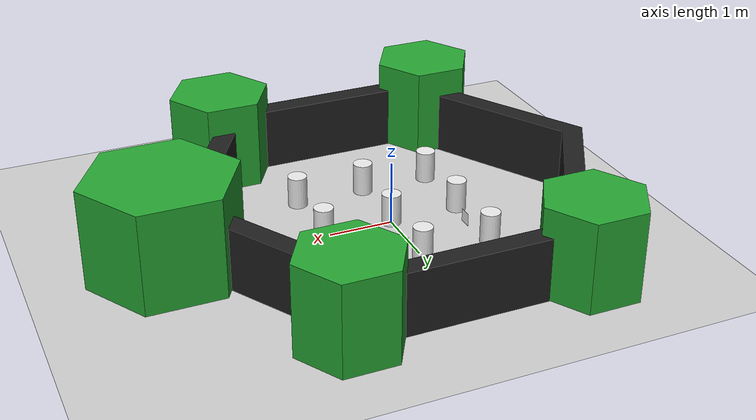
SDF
<sdf version='1.10'>
  <world name='roboto_world'>
    <physics name='1ms' type='ignored'>
      <max_step_size>0.001</max_step_size>
      <real_time_factor>1</real_time_factor>
      <real_time_update_rate>1000</real_time_update_rate>
    </physics>
    <plugin name='gz::sim::systems::Physics' filename='gz-sim-physics-system'/>
    <plugin name='gz::sim::systems::UserCommands' filename='gz-sim-user-commands-system'/>
    <plugin name='gz::sim::systems::SceneBroadcaster' filename='gz-sim-scene-broadcaster-system'/>
    <plugin name='gz::sim::systems::Contact' filename='gz-sim-contact-system'/>

    <gravity>0 0 -9.8067</gravity>
    <magnetic_field>5.5645e-06 2.2876e-05 -4.2388e-05</magnetic_field>
    <atmosphere type='adiabatic'/>
    <scene>
      <ambient>0.4 0.4 0.4 1</ambient>
      <background>0.7 0.7 0.7 1</background>
      <shadows>true</shadows>
    </scene>

    <model name='ground_plane'>
      <static>true</static>
      <link name='link'>
        <collision name='collision'>
          <geometry>
            <plane>
              <normal>0 0 1</normal>
              <size>100 100</size>
            </plane>
          </geometry>
          <surface>
            <friction>
              <ode/>
            </friction>
            <bounce/>
            <contact/>
          </surface>
        </collision>
        <visual name='visual'>
          <geometry>
            <plane>
              <normal>0 0 1</normal>
              <size>100 100</size>
            </plane>
          </geometry>
          <material>
            <ambient>0.800000012 0.800000012 0.800000012 1</ambient>
            <diffuse>0.800000012 0.800000012 0.800000012 1</diffuse>
            <specular>0.800000012 0.800000012 0.800000012 1</specular>
          </material>
        </visual>
        <pose>0 0 0 0 0 0</pose>
        <inertial>
          <pose>0 0 0 0 0 0</pose>
          <mass>1</mass>
          <inertia>
            <ixx>1</ixx>
            <ixy>0</ixy>
            <ixz>0</ixz>
            <iyy>1</iyy>
            <iyz>0</iyz>
            <izz>1</izz>
          </inertia>
        </inertial>
        <enable_wind>false</enable_wind>
      </link>
      <pose>0 0 0 0 0 0</pose>
      <self_collide>false</self_collide>
    </model>

    <model name="tag0">
      <static>true</static>
      <link name="link">
        <visual name="visual">
          <pose>1.0 0.5 0.12 1.5708 1.5708 1.5708</pose>
          <geometry>
            <box>
              <size>0.2 0.2 0.001</size>
            </box>
          </geometry>
          <material>
            <ambient>1 1 1 1</ambient>
            <diffuse>1 1 1 1</diffuse>
            <specular>0.5 0.5 0.5 1</specular>
            <pbr>
              <metal>
                <albedo_map>file://materials/textures/tag36_11_00000.png</albedo_map>
                <roughness>0.5</roughness>
                <metalness>0.0</metalness>
              </metal>
            </pbr>
          </material>
        </visual>
        <collision name="collision">
          <pose>1.0 0.5 0.12 1.5708 1.5708 1.5708</pose>
          <geometry>
            <box>
              <size>0.2 0.2 0.001</size>
            </box>
          </geometry>
        </collision>
      </link>
    </model>

    <model name="tag1">
      <static>true</static>
      <link name="link">
        <visual name="visual">
          <pose>-1.0 0.5 0.12 0.0 1.5708 3.1416</pose>
          <geometry>
            <box>
              <size>0.2 0.2 0.001</size>
            </box>
          </geometry>
          <material>
            <ambient>1 1 1 1</ambient>
            <diffuse>1 1 1 1</diffuse>
            <specular>0.5 0.5 0.5 1</specular>
            <pbr>
              <metal>
                <albedo_map>file://materials/textures/tag36_11_00001.png</albedo_map>
                <roughness>0.5</roughness>
                <metalness>0.0</metalness>
              </metal>
            </pbr>
          </material>
        </visual>
        <collision name="collision">
          <pose>-1.0 0.5 0.12 0.0 1.5708 3.1416</pose>
          <geometry>
            <box>
              <size>0.2 0.2 0.001</size>
            </box>
          </geometry>
        </collision>
      </link>
    </model>

    <model name='arena'>
      <static>1</static>
      <link name='symbol'>
        <collision name='one_one'>
          <pose>-1.1 -1.1 0.25 0 0 0</pose>
          <geometry>
            <cylinder>
              <radius>0.15</radius>
              <length>0.5</length>
            </cylinder>
          </geometry>
          <max_contacts>10</max_contacts>
          <surface>
            <bounce/>
            <friction>
              <ode/>
            </friction>
            <contact>
              <ode/>
            </contact>
          </surface>
        </collision>

        <visual name='one_one'>
          <pose>-1.1 -1.1 0.25 0 0 0</pose>
          <geometry>
            <cylinder>
              <radius>0.15</radius>
              <length>0.5</length>
            </cylinder>
          </geometry>
          <material>
            <script>
              <uri>file://media/materials/scripts/gazebo.material</uri>
              <name>Gazebo/White</name>
            </script>
          </material>
        </visual>

        <collision name='one_two'>
          <pose>-1.1 0 0.25 0 0 0</pose>
          <geometry>
            <cylinder>
              <radius>0.15</radius>
              <length>0.5</length>
            </cylinder>
          </geometry>
          <max_contacts>10</max_contacts>
          <surface>
            <bounce/>
            <friction>
              <ode/>
            </friction>
            <contact>
              <ode/>
            </contact>
          </surface>
        </collision>

        <visual name='one_two'>
          <pose>-1.1 0 0.25 0 0 0</pose>
          <geometry>
            <cylinder>
              <radius>0.15</radius>
              <length>0.5</length>
            </cylinder>
          </geometry>
          <material>
            <script>
              <uri>file://media/materials/scripts/gazebo.material</uri>
              <name>Gazebo/White</name>
            </script>
          </material>
        </visual>

        <collision name='one_three'>
          <pose>-1.1 1.1 0.25 0 0 0</pose>
          <geometry>
            <cylinder>
              <radius>0.15</radius>
              <length>0.5</length>
            </cylinder>
          </geometry>
          <max_contacts>10</max_contacts>
          <surface>
            <bounce/>
            <friction>
              <ode/>
            </friction>
            <contact>
              <ode/>
            </contact>
          </surface>
        </collision>

        <visual name='one_three'>
          <pose>-1.1 1.1 0.25 0 0 0</pose>
          <geometry>
            <cylinder>
              <radius>0.15</radius>
              <length>0.5</length>
            </cylinder>
          </geometry>
          <material>
            <script>
              <uri>file://media/materials/scripts/gazebo.material</uri>
              <name>Gazebo/White</name>
            </script>
          </material>
        </visual>

        <collision name='two_one'>
          <pose>0 -1.1 0.25 0 0 0</pose>
          <geometry>
            <cylinder>
              <radius>0.15</radius>
              <length>0.5</length>
            </cylinder>
          </geometry>
          <max_contacts>10</max_contacts>
          <surface>
            <bounce/>
            <friction>
              <ode/>
            </friction>
            <contact>
              <ode/>
            </contact>
          </surface>
        </collision>

        <visual name='two_one'>
          <pose>0 -1.1 0.25 0 0 0</pose>
          <geometry>
            <cylinder>
              <radius>0.15</radius>
              <length>0.5</length>
            </cylinder>
          </geometry>
          <material>
            <script>
              <uri>file://media/materials/scripts/gazebo.material</uri>
              <name>Gazebo/White</name>
            </script>
          </material>
        </visual>

        <collision name='two_two'>
          <pose>0 0 0.25 0 0 0</pose>
          <geometry>
            <cylinder>
              <radius>0.15</radius>
              <length>0.5</length>
            </cylinder>
          </geometry>
          <max_contacts>10</max_contacts>
          <surface>
            <bounce/>
            <friction>
              <ode/>
            </friction>
            <contact>
              <ode/>
            </contact>
          </surface>
        </collision>

        <visual name='two_two'>
          <pose>0 0 0.25 0 0 0</pose>
          <geometry>
            <cylinder>
              <radius>0.15</radius>
              <length>0.5</length>
            </cylinder>
          </geometry>
          <material>
            <script>
              <uri>file://media/materials/scripts/gazebo.material</uri>
              <name>Gazebo/White</name>
            </script>
          </material>
        </visual>

        <collision name='two_three'>
          <pose>0 1.1 0.25 0 0 0</pose>
          <geometry>
            <cylinder>
              <radius>0.15</radius>
              <length>0.5</length>
            </cylinder>
          </geometry>
          <max_contacts>10</max_contacts>
          <surface>
            <bounce/>
            <friction>
              <ode/>
            </friction>
            <contact>
              <ode/>
            </contact>
          </surface>
        </collision>

        <visual name='two_three'>
          <pose>0 1.1 0.25 0 0 0</pose>
          <geometry>
            <cylinder>
              <radius>0.15</radius>
              <length>0.5</length>
            </cylinder>
          </geometry>
          <material>
            <script>
              <uri>file://media/materials/scripts/gazebo.material</uri>
              <name>Gazebo/White</name>
            </script>
          </material>
        </visual>

        <collision name='three_one'>
          <pose>1.1 -1.1 0.25 0 0 0</pose>
          <geometry>
            <cylinder>
              <radius>0.15</radius>
              <length>0.5</length>
            </cylinder>
          </geometry>
          <max_contacts>10</max_contacts>
          <surface>
            <bounce/>
            <friction>
              <ode/>
            </friction>
            <contact>
              <ode/>
            </contact>
          </surface>
        </collision>

        <visual name='three_one'>
          <pose>1.1 -1.1 0.25 0 0 0</pose>
          <geometry>
            <cylinder>
              <radius>0.15</radius>
              <length>0.5</length>
            </cylinder>
          </geometry>
          <material>
            <script>
              <uri>file://media/materials/scripts/gazebo.material</uri>
              <name>Gazebo/White</name>
            </script>
          </material>
        </visual>

        <collision name='three_two'>
          <pose>1.1 0 0.25 0 0 0</pose>
          <geometry>
            <cylinder>
              <radius>0.15</radius>
              <length>0.5</length>
            </cylinder>
          </geometry>
          <max_contacts>10</max_contacts>
          <surface>
            <bounce/>
            <friction>
              <ode/>
            </friction>
            <contact>
              <ode/>
            </contact>
          </surface>
        </collision>

        <visual name='three_two'>
          <pose>1.1 0 0.25 0 0 0</pose>
          <geometry>
            <cylinder>
              <radius>0.15</radius>
              <length>0.5</length>
            </cylinder>
          </geometry>
          <material>
            <script>
              <uri>file://media/materials/scripts/gazebo.material</uri>
              <name>Gazebo/White</name>
            </script>
          </material>
        </visual>

        <collision name='three_three'>
          <pose>1.1 1.1 0.25 0 0 0</pose>
          <geometry>
            <cylinder>
              <radius>0.15</radius>
              <length>0.5</length>
            </cylinder>
          </geometry>
          <max_contacts>10</max_contacts>
          <surface>
            <bounce/>
            <friction>
              <ode/>
            </friction>
            <contact>
              <ode/>
            </contact>
          </surface>
        </collision>

        <visual name='three_three'>
          <pose>1.1 1.1 0.25 0 0 0</pose>
          <geometry>
            <cylinder>
              <radius>0.15</radius>
              <length>0.5</length>
            </cylinder>
          </geometry>
          <material>
            <script>
              <uri>file://media/materials/scripts/gazebo.material</uri>
              <name>Gazebo/White</name>
            </script>
          </material>
        </visual>

        <!-- Draw Hexagon -->
        <collision name='head'>
          <pose>3.5 0 -0.5 0 0 0</pose>
          <geometry>
            <mesh>
              <uri>model://meshes/hexagon.dae</uri>
              <scale>0.8 0.8 0.8</scale>
            </mesh>
          </geometry>
          <max_contacts>10</max_contacts>
          <surface>
            <bounce/>
            <friction>
              <ode/>
            </friction>
            <contact>
              <ode/>
            </contact>
          </surface>
        </collision>

        <visual name='head'>
          <pose>3.5 0 -0.5 0 0 0</pose>
          <geometry>
            <mesh>
              <uri>model://meshes/hexagon.dae</uri>
              <scale>0.8 0.8 0.8</scale>
            </mesh>
          </geometry>
          <material>
            <script>
              <uri>file://media/materials/scripts/gazebo.material</uri>
              <name>Gazebo/Green</name>
            </script>
          </material>
        </visual>

        <collision name='left_hand'>
          <pose>1.8 2.7 0 0 0 0</pose>
          <geometry>
            <mesh>
              <uri>model://meshes/hexagon.dae</uri>
              <scale>0.55 0.55 0.55</scale>
            </mesh>
          </geometry>
          <max_contacts>10</max_contacts>
          <surface>
            <bounce/>
            <friction>
              <ode/>
            </friction>
            <contact>
              <ode/>
            </contact>
          </surface>
        </collision>

        <visual name='left_hand'>
          <pose>1.8 2.7 0 0 0 0</pose>
          <geometry>
            <mesh>
              <uri>model://meshes/hexagon.dae</uri>
              <scale>0.55 0.55 0.55</scale>
            </mesh>
          </geometry>
          <material>
            <script>
              <uri>file://media/materials/scripts/gazebo.material</uri>
              <name>Gazebo/Green</name>
            </script>
          </material>
        </visual>

        <collision name='right_hand'>
          <pose>1.8 -2.7 0 0 0 0</pose>
          <geometry>
            <mesh>
              <uri>model://meshes/hexagon.dae</uri>
              <scale>0.55 0.55 0.55</scale>
            </mesh>
          </geometry>
          <max_contacts>10</max_contacts>
          <surface>
            <bounce/>
            <friction>
              <ode/>
            </friction>
            <contact>
              <ode/>
            </contact>
          </surface>
        </collision>

        <visual name='right_hand'>
          <pose>1.8 -2.7 0 0 0 0</pose>
          <geometry>
            <mesh>
              <uri>model://meshes/hexagon.dae</uri>
              <scale>0.55 0.55 0.55</scale>
            </mesh>
          </geometry>
          <material>
            <script>
              <uri>file://media/materials/scripts/gazebo.material</uri>
              <name>Gazebo/Green</name>
            </script>
          </material>
        </visual>

        <collision name='left_foot'>
          <pose>-1.8 2.7 0 0 0 0</pose>
          <geometry>
            <mesh>
              <uri>model://meshes/hexagon.dae</uri>
              <scale>0.55 0.55 0.55</scale>
            </mesh>
          </geometry>
          <max_contacts>10</max_contacts>
          <surface>
            <bounce/>
            <friction>
              <ode/>
            </friction>
            <contact>
              <ode/>
            </contact>
          </surface>
        </collision>

        <visual name='left_foot'>
          <pose>-1.8 2.7 0 0 0 0</pose>
          <geometry>
            <mesh>
              <uri>model://meshes/hexagon.dae</uri>
              <scale>0.55 0.55 0.55</scale>
            </mesh>
          </geometry>
          <material>
            <script>
              <uri>file://media/materials/scripts/gazebo.material</uri>
              <name>Gazebo/Green</name>
            </script>
          </material>
        </visual>

        <collision name='right_foot'>
          <pose>-1.8 -2.7 0 0 0 0</pose>
          <geometry>
            <mesh>
              <uri>model://meshes/hexagon.dae</uri>
              <scale>0.55 0.55 0.55</scale>
            </mesh>
          </geometry>
          <max_contacts>10</max_contacts>
          <surface>
            <bounce/>
            <friction>
              <ode/>
            </friction>
            <contact>
              <ode/>
            </contact>
          </surface>
        </collision>

        <visual name='right_foot'>
          <pose>-1.8 -2.7 0 0 0 0</pose>
          <geometry>
            <mesh>
              <uri>model://meshes/hexagon.dae</uri>
              <scale>0.55 0.55 0.55</scale>
            </mesh>
          </geometry>
          <material>
            <script>
              <uri>file://media/materials/scripts/gazebo.material</uri>
              <name>Gazebo/Green</name>
            </script>
          </material>
        </visual>

        <!-- Draw Wall -->
        <collision name='body'>
          <pose>0 0 -0.3 0 0 -1.5708</pose>
          <geometry>
            <mesh>
              <uri>model://meshes/wall.dae</uri>
              <scale>0.25 0.25 0.25</scale>
            </mesh>
          </geometry>
          <max_contacts>10</max_contacts>
          <surface>
            <bounce/>
            <friction>
              <ode/>
            </friction> /home/rooteq/ros2_ws/src/roboto_diffbot/sim/world
            <contact>
              <ode/>
            </contact>
          </surface>
        </collision>

        <visual name='body'>
          <pose>0 0 -0.3 0 0 -1.5708</pose>
          <geometry>
            <mesh>
              <uri>model://meshes/wall.dae</uri>
              <scale>0.25 0.25 0.25</scale>
            </mesh>
          </geometry>
          <material>
            <script>
              <uri>file://media/materials/scripts/gazebo.material</uri>
              <name>Gazebo/FlatBlack</name>
            </script>
          </material>
        </visual>
      </link>
    </model>

    <light name='sun' type='directional'>
      <pose>0 0 10 0 0 0</pose>
      <cast_shadows>true</cast_shadows>
      <intensity>1</intensity>
      <direction>-0.5 0.10000000000000001 -0.90000000000000002</direction>
      <diffuse>0.800000012 0.800000012 0.800000012 1</diffuse>
      <specular>0.200000003 0.200000003 0.200000003 1</specular>
      <attenuation>
        <range>1000</range>
        <linear>0.01</linear>
        <constant>0.90000000000000002</constant>
        <quadratic>0.001</quadratic>
      </attenuation>
      <spot>
        <inner_angle>0</inner_angle>
        <outer_angle>0</outer_angle>
        <falloff>0</falloff>
      </spot>
    </light>
  </world>
</sdf>
